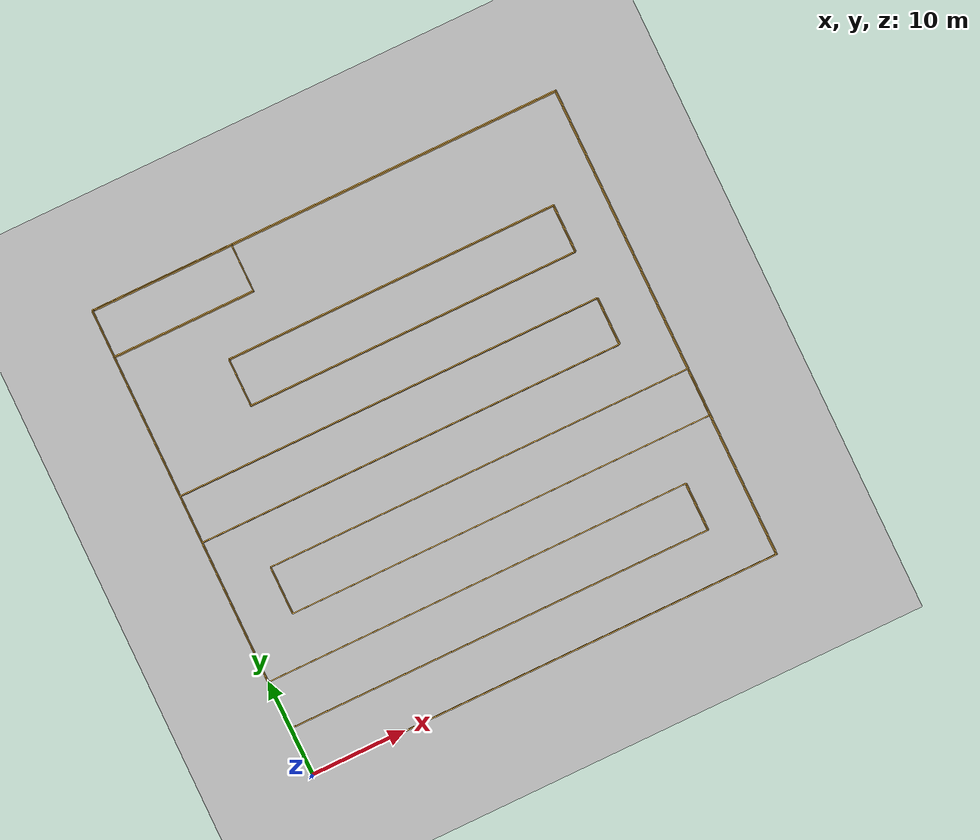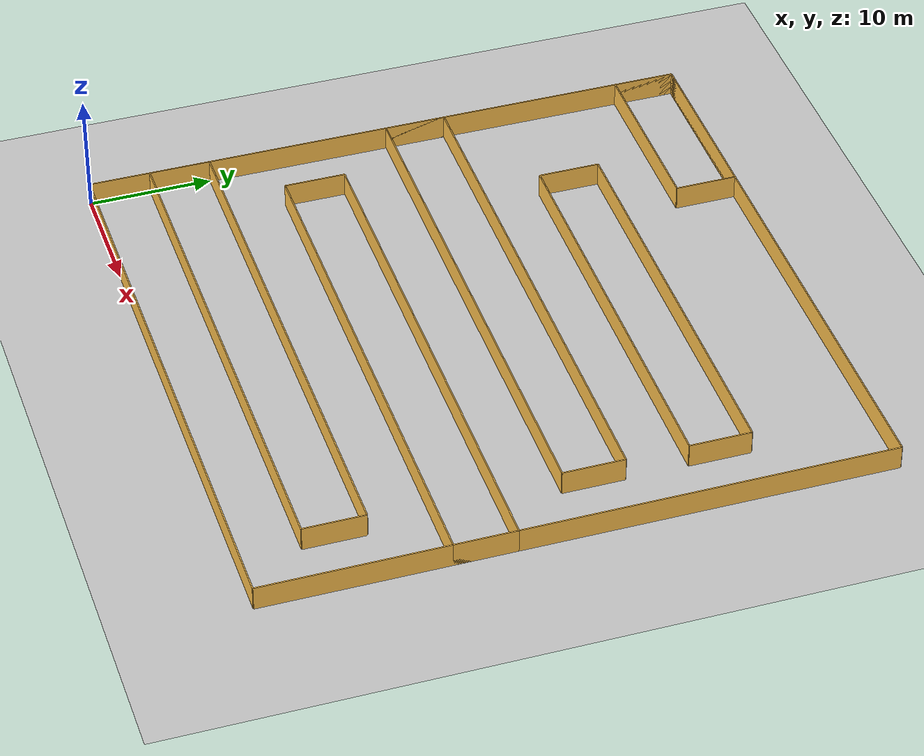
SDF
<sdf version="1.6">
 <world name="default">
  <light name="sun" type="directional">
   <cast_shadows>0</cast_shadows>
   <pose>0 0 10 0 -0 0</pose>
   <diffuse>0.8 0.8 0.8 1</diffuse>
   <specular>0.2 0.2 0.2 1</specular>
   <attenuation>
    <range>1000</range>
    <constant>0.9</constant>
    <linear>0.01</linear>
    <quadratic>0.001</quadratic>
   </attenuation>
   <direction>0.5 0.1 -0.9</direction>
  </light>
  <model name="ground_plane">
   <static>1</static>
   <link name="link">
    <collision name="collision">
     <geometry><plane><normal>0 0 1</normal><size>100 100</size></plane></geometry>
     <surface><friction><ode><mu>100</mu><mu2>50</mu2></ode></friction></surface>
    </collision>
    <visual name="visual">
     <cast_shadows>0</cast_shadows>
     <geometry><plane><normal>0 0 1</normal><size>100 100</size></plane></geometry>
     <material>
      <script><uri>file://media/materials/scripts/gazebo.material</uri><name>Gazebo/Grey</name></script>
     </material>
    </visual>
    <velocity_decay><linear>0</linear><angular>0</angular></velocity_decay>
   </link>
  </model>
  <scene><ambient>0.4 0.4 0.4 1</ambient><background>0.7 0.7 0.7 1</background><shadows>0</shadows></scene>
  <gravity>0 0 -9.8</gravity>
  <physics type="ode">
   <max_step_size>0.001</max_step_size>
   <real_time_factor>1</real_time_factor>
   <real_time_update_rate>500</real_time_update_rate>
  </physics>
  <include><uri>model://scene_2</uri></include>
 </world>
</sdf>

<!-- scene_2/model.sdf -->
<sdf version="1.6">
  <model name="scene_2">
    <static>true</static>
    <link name="wall_0">
      <pose>22.5 5.0 1.0 0 0 0.0</pose>
      <self_collide>0</self_collide>
      <kinematic>0</kinematic>
      <visual name="wall_0_visual">
        <geometry>
          <box>
            <size>45.0 0.1 2.0</size>
            </box>
          </geometry>
        <material>
          <script>
            <uri>file://media/materials/scripts/gazebo.material</uri>
            <name>Gazebo/Grey</name>
            </script>
          <ambient>1 0.764706 0.305882 1</ambient>
          <diffuse>0.7 0.7 0.7 1</diffuse>
          <specular>0.01 0.01 0.01 1</specular>
          <emissive>0 0 0 1</emissive>
          <shader type="pixel" />
          </material>
        <cast_shadows>1</cast_shadows>
        <transparency>0</transparency>
        </visual>
      <collision name="wall_0_collision">
        <geometry>
          <box>
            <size>45.0 0.1 2.0</size>
            </box>
          </geometry>
        <laser_retro>0</laser_retro>
        <max_contacts>10</max_contacts>
        <surface>
          <friction>
            <ode>
              <mu>1</mu>
              <mu2>1</mu2>
              <fdir1>0 0 0</fdir1>
              <slip1>0</slip1>
              <slip2>0</slip2>
              </ode>
            </friction>
          <bounce>
            <restitution_coefficient>0</restitution_coefficient>
            <threshold>1000000</threshold>
            </bounce>
          <contact>
            <collide_without_contact>0</collide_without_contact>
            <collide_without_contact_bitmask>1</collide_without_contact_bitmask>
            <collide_bitmask>1</collide_bitmask>
            <ode>
              <soft_cfm>0</soft_cfm>
              <soft_erp>0.2</soft_erp>
              <kp>10000000000000.0</kp>
              <kd>1</kd>
              <max_vel>0.01</max_vel>
              <min_depth>0</min_depth>
              </ode>
            <bullet>
              <split_impulse>1</split_impulse>
              <split_impulse_penetration_threshold>-0.01</split_impulse_penetration_threshold>
              <soft_cfm>0</soft_cfm>
              <soft_erp>0.2</soft_erp>
              <kp>10000000000000.0</kp>
              <kd>1</kd>
              </bullet>
            </contact>
          </surface>
        </collision>
      </link>
    <link name="wall_1">
      <pose>45.0 7.5 1.0 0 0 1.5707963267948966</pose>
      <self_collide>0</self_collide>
      <kinematic>0</kinematic>
      <visual name="wall_1_visual">
        <geometry>
          <box>
            <size>5.0 0.1 2.0</size>
            </box>
          </geometry>
        <material>
          <script>
            <uri>file://media/materials/scripts/gazebo.material</uri>
            <name>Gazebo/Grey</name>
            </script>
          <ambient>1 0.764706 0.305882 1</ambient>
          <diffuse>0.7 0.7 0.7 1</diffuse>
          <specular>0.01 0.01 0.01 1</specular>
          <emissive>0 0 0 1</emissive>
          <shader type="pixel" />
          </material>
        <cast_shadows>1</cast_shadows>
        <transparency>0</transparency>
        </visual>
      <collision name="wall_1_collision">
        <geometry>
          <box>
            <size>5.0 0.1 2.0</size>
            </box>
          </geometry>
        <laser_retro>0</laser_retro>
        <max_contacts>10</max_contacts>
        <surface>
          <friction>
            <ode>
              <mu>1</mu>
              <mu2>1</mu2>
              <fdir1>0 0 0</fdir1>
              <slip1>0</slip1>
              <slip2>0</slip2>
              </ode>
            </friction>
          <bounce>
            <restitution_coefficient>0</restitution_coefficient>
            <threshold>1000000</threshold>
            </bounce>
          <contact>
            <collide_without_contact>0</collide_without_contact>
            <collide_without_contact_bitmask>1</collide_without_contact_bitmask>
            <collide_bitmask>1</collide_bitmask>
            <ode>
              <soft_cfm>0</soft_cfm>
              <soft_erp>0.2</soft_erp>
              <kp>10000000000000.0</kp>
              <kd>1</kd>
              <max_vel>0.01</max_vel>
              <min_depth>0</min_depth>
              </ode>
            <bullet>
              <split_impulse>1</split_impulse>
              <split_impulse_penetration_threshold>-0.01</split_impulse_penetration_threshold>
              <soft_cfm>0</soft_cfm>
              <soft_erp>0.2</soft_erp>
              <kp>10000000000000.0</kp>
              <kd>1</kd>
              </bullet>
            </contact>
          </surface>
        </collision>
      </link>
    <link name="wall_2">
      <pose>22.5 10.0 1.0 0 0 3.141592653589793</pose>
      <self_collide>0</self_collide>
      <kinematic>0</kinematic>
      <visual name="wall_2_visual">
        <geometry>
          <box>
            <size>45.0 0.1 2.0</size>
            </box>
          </geometry>
        <material>
          <script>
            <uri>file://media/materials/scripts/gazebo.material</uri>
            <name>Gazebo/Grey</name>
            </script>
          <ambient>1 0.764706 0.305882 1</ambient>
          <diffuse>0.7 0.7 0.7 1</diffuse>
          <specular>0.01 0.01 0.01 1</specular>
          <emissive>0 0 0 1</emissive>
          <shader type="pixel" />
          </material>
        <cast_shadows>1</cast_shadows>
        <transparency>0</transparency>
        </visual>
      <collision name="wall_2_collision">
        <geometry>
          <box>
            <size>45.0 0.1 2.0</size>
            </box>
          </geometry>
        <laser_retro>0</laser_retro>
        <max_contacts>10</max_contacts>
        <surface>
          <friction>
            <ode>
              <mu>1</mu>
              <mu2>1</mu2>
              <fdir1>0 0 0</fdir1>
              <slip1>0</slip1>
              <slip2>0</slip2>
              </ode>
            </friction>
          <bounce>
            <restitution_coefficient>0</restitution_coefficient>
            <threshold>1000000</threshold>
            </bounce>
          <contact>
            <collide_without_contact>0</collide_without_contact>
            <collide_without_contact_bitmask>1</collide_without_contact_bitmask>
            <collide_bitmask>1</collide_bitmask>
            <ode>
              <soft_cfm>0</soft_cfm>
              <soft_erp>0.2</soft_erp>
              <kp>10000000000000.0</kp>
              <kd>1</kd>
              <max_vel>0.01</max_vel>
              <min_depth>0</min_depth>
              </ode>
            <bullet>
              <split_impulse>1</split_impulse>
              <split_impulse_penetration_threshold>-0.01</split_impulse_penetration_threshold>
              <soft_cfm>0</soft_cfm>
              <soft_erp>0.2</soft_erp>
              <kp>10000000000000.0</kp>
              <kd>1</kd>
              </bullet>
            </contact>
          </surface>
        </collision>
      </link>
    <link name="wall_3">
      <pose>0.0 7.5 1.0 0 0 -1.5707963267948966</pose>
      <self_collide>0</self_collide>
      <kinematic>0</kinematic>
      <visual name="wall_3_visual">
        <geometry>
          <box>
            <size>5.0 0.1 2.0</size>
            </box>
          </geometry>
        <material>
          <script>
            <uri>file://media/materials/scripts/gazebo.material</uri>
            <name>Gazebo/Grey</name>
            </script>
          <ambient>1 0.764706 0.305882 1</ambient>
          <diffuse>0.7 0.7 0.7 1</diffuse>
          <specular>0.01 0.01 0.01 1</specular>
          <emissive>0 0 0 1</emissive>
          <shader type="pixel" />
          </material>
        <cast_shadows>1</cast_shadows>
        <transparency>0</transparency>
        </visual>
      <collision name="wall_3_collision">
        <geometry>
          <box>
            <size>5.0 0.1 2.0</size>
            </box>
          </geometry>
        <laser_retro>0</laser_retro>
        <max_contacts>10</max_contacts>
        <surface>
          <friction>
            <ode>
              <mu>1</mu>
              <mu2>1</mu2>
              <fdir1>0 0 0</fdir1>
              <slip1>0</slip1>
              <slip2>0</slip2>
              </ode>
            </friction>
          <bounce>
            <restitution_coefficient>0</restitution_coefficient>
            <threshold>1000000</threshold>
            </bounce>
          <contact>
            <collide_without_contact>0</collide_without_contact>
            <collide_without_contact_bitmask>1</collide_without_contact_bitmask>
            <collide_bitmask>1</collide_bitmask>
            <ode>
              <soft_cfm>0</soft_cfm>
              <soft_erp>0.2</soft_erp>
              <kp>10000000000000.0</kp>
              <kd>1</kd>
              <max_vel>0.01</max_vel>
              <min_depth>0</min_depth>
              </ode>
            <bullet>
              <split_impulse>1</split_impulse>
              <split_impulse_penetration_threshold>-0.01</split_impulse_penetration_threshold>
              <soft_cfm>0</soft_cfm>
              <soft_erp>0.2</soft_erp>
              <kp>10000000000000.0</kp>
              <kd>1</kd>
              </bullet>
            </contact>
          </surface>
        </collision>
      </link>
    <link name="wall_4">
      <pose>27.5 15.0 1.0 0 0 0.0</pose>
      <self_collide>0</self_collide>
      <kinematic>0</kinematic>
      <visual name="wall_4_visual">
        <geometry>
          <box>
            <size>45.0 0.1 2.0</size>
            </box>
          </geometry>
        <material>
          <script>
            <uri>file://media/materials/scripts/gazebo.material</uri>
            <name>Gazebo/Grey</name>
            </script>
          <ambient>1 0.764706 0.305882 1</ambient>
          <diffuse>0.7 0.7 0.7 1</diffuse>
          <specular>0.01 0.01 0.01 1</specular>
          <emissive>0 0 0 1</emissive>
          <shader type="pixel" />
          </material>
        <cast_shadows>1</cast_shadows>
        <transparency>0</transparency>
        </visual>
      <collision name="wall_4_collision">
        <geometry>
          <box>
            <size>45.0 0.1 2.0</size>
            </box>
          </geometry>
        <laser_retro>0</laser_retro>
        <max_contacts>10</max_contacts>
        <surface>
          <friction>
            <ode>
              <mu>1</mu>
              <mu2>1</mu2>
              <fdir1>0 0 0</fdir1>
              <slip1>0</slip1>
              <slip2>0</slip2>
              </ode>
            </friction>
          <bounce>
            <restitution_coefficient>0</restitution_coefficient>
            <threshold>1000000</threshold>
            </bounce>
          <contact>
            <collide_without_contact>0</collide_without_contact>
            <collide_without_contact_bitmask>1</collide_without_contact_bitmask>
            <collide_bitmask>1</collide_bitmask>
            <ode>
              <soft_cfm>0</soft_cfm>
              <soft_erp>0.2</soft_erp>
              <kp>10000000000000.0</kp>
              <kd>1</kd>
              <max_vel>0.01</max_vel>
              <min_depth>0</min_depth>
              </ode>
            <bullet>
              <split_impulse>1</split_impulse>
              <split_impulse_penetration_threshold>-0.01</split_impulse_penetration_threshold>
              <soft_cfm>0</soft_cfm>
              <soft_erp>0.2</soft_erp>
              <kp>10000000000000.0</kp>
              <kd>1</kd>
              </bullet>
            </contact>
          </surface>
        </collision>
      </link>
    <link name="wall_5">
      <pose>50.0 17.5 1.0 0 0 1.5707963267948966</pose>
      <self_collide>0</self_collide>
      <kinematic>0</kinematic>
      <visual name="wall_5_visual">
        <geometry>
          <box>
            <size>5.0 0.1 2.0</size>
            </box>
          </geometry>
        <material>
          <script>
            <uri>file://media/materials/scripts/gazebo.material</uri>
            <name>Gazebo/Grey</name>
            </script>
          <ambient>1 0.764706 0.305882 1</ambient>
          <diffuse>0.7 0.7 0.7 1</diffuse>
          <specular>0.01 0.01 0.01 1</specular>
          <emissive>0 0 0 1</emissive>
          <shader type="pixel" />
          </material>
        <cast_shadows>1</cast_shadows>
        <transparency>0</transparency>
        </visual>
      <collision name="wall_5_collision">
        <geometry>
          <box>
            <size>5.0 0.1 2.0</size>
            </box>
          </geometry>
        <laser_retro>0</laser_retro>
        <max_contacts>10</max_contacts>
        <surface>
          <friction>
            <ode>
              <mu>1</mu>
              <mu2>1</mu2>
              <fdir1>0 0 0</fdir1>
              <slip1>0</slip1>
              <slip2>0</slip2>
              </ode>
            </friction>
          <bounce>
            <restitution_coefficient>0</restitution_coefficient>
            <threshold>1000000</threshold>
            </bounce>
          <contact>
            <collide_without_contact>0</collide_without_contact>
            <collide_without_contact_bitmask>1</collide_without_contact_bitmask>
            <collide_bitmask>1</collide_bitmask>
            <ode>
              <soft_cfm>0</soft_cfm>
              <soft_erp>0.2</soft_erp>
              <kp>10000000000000.0</kp>
              <kd>1</kd>
              <max_vel>0.01</max_vel>
              <min_depth>0</min_depth>
              </ode>
            <bullet>
              <split_impulse>1</split_impulse>
              <split_impulse_penetration_threshold>-0.01</split_impulse_penetration_threshold>
              <soft_cfm>0</soft_cfm>
              <soft_erp>0.2</soft_erp>
              <kp>10000000000000.0</kp>
              <kd>1</kd>
              </bullet>
            </contact>
          </surface>
        </collision>
      </link>
    <link name="wall_6">
      <pose>27.5 20.0 1.0 0 0 3.141592653589793</pose>
      <self_collide>0</self_collide>
      <kinematic>0</kinematic>
      <visual name="wall_6_visual">
        <geometry>
          <box>
            <size>45.0 0.1 2.0</size>
            </box>
          </geometry>
        <material>
          <script>
            <uri>file://media/materials/scripts/gazebo.material</uri>
            <name>Gazebo/Grey</name>
            </script>
          <ambient>1 0.764706 0.305882 1</ambient>
          <diffuse>0.7 0.7 0.7 1</diffuse>
          <specular>0.01 0.01 0.01 1</specular>
          <emissive>0 0 0 1</emissive>
          <shader type="pixel" />
          </material>
        <cast_shadows>1</cast_shadows>
        <transparency>0</transparency>
        </visual>
      <collision name="wall_6_collision">
        <geometry>
          <box>
            <size>45.0 0.1 2.0</size>
            </box>
          </geometry>
        <laser_retro>0</laser_retro>
        <max_contacts>10</max_contacts>
        <surface>
          <friction>
            <ode>
              <mu>1</mu>
              <mu2>1</mu2>
              <fdir1>0 0 0</fdir1>
              <slip1>0</slip1>
              <slip2>0</slip2>
              </ode>
            </friction>
          <bounce>
            <restitution_coefficient>0</restitution_coefficient>
            <threshold>1000000</threshold>
            </bounce>
          <contact>
            <collide_without_contact>0</collide_without_contact>
            <collide_without_contact_bitmask>1</collide_without_contact_bitmask>
            <collide_bitmask>1</collide_bitmask>
            <ode>
              <soft_cfm>0</soft_cfm>
              <soft_erp>0.2</soft_erp>
              <kp>10000000000000.0</kp>
              <kd>1</kd>
              <max_vel>0.01</max_vel>
              <min_depth>0</min_depth>
              </ode>
            <bullet>
              <split_impulse>1</split_impulse>
              <split_impulse_penetration_threshold>-0.01</split_impulse_penetration_threshold>
              <soft_cfm>0</soft_cfm>
              <soft_erp>0.2</soft_erp>
              <kp>10000000000000.0</kp>
              <kd>1</kd>
              </bullet>
            </contact>
          </surface>
        </collision>
      </link>
    <link name="wall_7">
      <pose>5.0 17.5 1.0 0 0 -1.5707963267948966</pose>
      <self_collide>0</self_collide>
      <kinematic>0</kinematic>
      <visual name="wall_7_visual">
        <geometry>
          <box>
            <size>5.0 0.1 2.0</size>
            </box>
          </geometry>
        <material>
          <script>
            <uri>file://media/materials/scripts/gazebo.material</uri>
            <name>Gazebo/Grey</name>
            </script>
          <ambient>1 0.764706 0.305882 1</ambient>
          <diffuse>0.7 0.7 0.7 1</diffuse>
          <specular>0.01 0.01 0.01 1</specular>
          <emissive>0 0 0 1</emissive>
          <shader type="pixel" />
          </material>
        <cast_shadows>1</cast_shadows>
        <transparency>0</transparency>
        </visual>
      <collision name="wall_7_collision">
        <geometry>
          <box>
            <size>5.0 0.1 2.0</size>
            </box>
          </geometry>
        <laser_retro>0</laser_retro>
        <max_contacts>10</max_contacts>
        <surface>
          <friction>
            <ode>
              <mu>1</mu>
              <mu2>1</mu2>
              <fdir1>0 0 0</fdir1>
              <slip1>0</slip1>
              <slip2>0</slip2>
              </ode>
            </friction>
          <bounce>
            <restitution_coefficient>0</restitution_coefficient>
            <threshold>1000000</threshold>
            </bounce>
          <contact>
            <collide_without_contact>0</collide_without_contact>
            <collide_without_contact_bitmask>1</collide_without_contact_bitmask>
            <collide_bitmask>1</collide_bitmask>
            <ode>
              <soft_cfm>0</soft_cfm>
              <soft_erp>0.2</soft_erp>
              <kp>10000000000000.0</kp>
              <kd>1</kd>
              <max_vel>0.01</max_vel>
              <min_depth>0</min_depth>
              </ode>
            <bullet>
              <split_impulse>1</split_impulse>
              <split_impulse_penetration_threshold>-0.01</split_impulse_penetration_threshold>
              <soft_cfm>0</soft_cfm>
              <soft_erp>0.2</soft_erp>
              <kp>10000000000000.0</kp>
              <kd>1</kd>
              </bullet>
            </contact>
          </surface>
        </collision>
      </link>
    <link name="wall_8">
      <pose>22.5 25.0 1.0 0 0 0.0</pose>
      <self_collide>0</self_collide>
      <kinematic>0</kinematic>
      <visual name="wall_8_visual">
        <geometry>
          <box>
            <size>45.0 0.1 2.0</size>
            </box>
          </geometry>
        <material>
          <script>
            <uri>file://media/materials/scripts/gazebo.material</uri>
            <name>Gazebo/Grey</name>
            </script>
          <ambient>1 0.764706 0.305882 1</ambient>
          <diffuse>0.7 0.7 0.7 1</diffuse>
          <specular>0.01 0.01 0.01 1</specular>
          <emissive>0 0 0 1</emissive>
          <shader type="pixel" />
          </material>
        <cast_shadows>1</cast_shadows>
        <transparency>0</transparency>
        </visual>
      <collision name="wall_8_collision">
        <geometry>
          <box>
            <size>45.0 0.1 2.0</size>
            </box>
          </geometry>
        <laser_retro>0</laser_retro>
        <max_contacts>10</max_contacts>
        <surface>
          <friction>
            <ode>
              <mu>1</mu>
              <mu2>1</mu2>
              <fdir1>0 0 0</fdir1>
              <slip1>0</slip1>
              <slip2>0</slip2>
              </ode>
            </friction>
          <bounce>
            <restitution_coefficient>0</restitution_coefficient>
            <threshold>1000000</threshold>
            </bounce>
          <contact>
            <collide_without_contact>0</collide_without_contact>
            <collide_without_contact_bitmask>1</collide_without_contact_bitmask>
            <collide_bitmask>1</collide_bitmask>
            <ode>
              <soft_cfm>0</soft_cfm>
              <soft_erp>0.2</soft_erp>
              <kp>10000000000000.0</kp>
              <kd>1</kd>
              <max_vel>0.01</max_vel>
              <min_depth>0</min_depth>
              </ode>
            <bullet>
              <split_impulse>1</split_impulse>
              <split_impulse_penetration_threshold>-0.01</split_impulse_penetration_threshold>
              <soft_cfm>0</soft_cfm>
              <soft_erp>0.2</soft_erp>
              <kp>10000000000000.0</kp>
              <kd>1</kd>
              </bullet>
            </contact>
          </surface>
        </collision>
      </link>
    <link name="wall_9">
      <pose>45.0 27.5 1.0 0 0 1.5707963267948966</pose>
      <self_collide>0</self_collide>
      <kinematic>0</kinematic>
      <visual name="wall_9_visual">
        <geometry>
          <box>
            <size>5.0 0.1 2.0</size>
            </box>
          </geometry>
        <material>
          <script>
            <uri>file://media/materials/scripts/gazebo.material</uri>
            <name>Gazebo/Grey</name>
            </script>
          <ambient>1 0.764706 0.305882 1</ambient>
          <diffuse>0.7 0.7 0.7 1</diffuse>
          <specular>0.01 0.01 0.01 1</specular>
          <emissive>0 0 0 1</emissive>
          <shader type="pixel" />
          </material>
        <cast_shadows>1</cast_shadows>
        <transparency>0</transparency>
        </visual>
      <collision name="wall_9_collision">
        <geometry>
          <box>
            <size>5.0 0.1 2.0</size>
            </box>
          </geometry>
        <laser_retro>0</laser_retro>
        <max_contacts>10</max_contacts>
        <surface>
          <friction>
            <ode>
              <mu>1</mu>
              <mu2>1</mu2>
              <fdir1>0 0 0</fdir1>
              <slip1>0</slip1>
              <slip2>0</slip2>
              </ode>
            </friction>
          <bounce>
            <restitution_coefficient>0</restitution_coefficient>
            <threshold>1000000</threshold>
            </bounce>
          <contact>
            <collide_without_contact>0</collide_without_contact>
            <collide_without_contact_bitmask>1</collide_without_contact_bitmask>
            <collide_bitmask>1</collide_bitmask>
            <ode>
              <soft_cfm>0</soft_cfm>
              <soft_erp>0.2</soft_erp>
              <kp>10000000000000.0</kp>
              <kd>1</kd>
              <max_vel>0.01</max_vel>
              <min_depth>0</min_depth>
              </ode>
            <bullet>
              <split_impulse>1</split_impulse>
              <split_impulse_penetration_threshold>-0.01</split_impulse_penetration_threshold>
              <soft_cfm>0</soft_cfm>
              <soft_erp>0.2</soft_erp>
              <kp>10000000000000.0</kp>
              <kd>1</kd>
              </bullet>
            </contact>
          </surface>
        </collision>
      </link>
    <link name="wall_10">
      <pose>22.5 30.0 1.0 0 0 3.141592653589793</pose>
      <self_collide>0</self_collide>
      <kinematic>0</kinematic>
      <visual name="wall_10_visual">
        <geometry>
          <box>
            <size>45.0 0.1 2.0</size>
            </box>
          </geometry>
        <material>
          <script>
            <uri>file://media/materials/scripts/gazebo.material</uri>
            <name>Gazebo/Grey</name>
            </script>
          <ambient>1 0.764706 0.305882 1</ambient>
          <diffuse>0.7 0.7 0.7 1</diffuse>
          <specular>0.01 0.01 0.01 1</specular>
          <emissive>0 0 0 1</emissive>
          <shader type="pixel" />
          </material>
        <cast_shadows>1</cast_shadows>
        <transparency>0</transparency>
        </visual>
      <collision name="wall_10_collision">
        <geometry>
          <box>
            <size>45.0 0.1 2.0</size>
            </box>
          </geometry>
        <laser_retro>0</laser_retro>
        <max_contacts>10</max_contacts>
        <surface>
          <friction>
            <ode>
              <mu>1</mu>
              <mu2>1</mu2>
              <fdir1>0 0 0</fdir1>
              <slip1>0</slip1>
              <slip2>0</slip2>
              </ode>
            </friction>
          <bounce>
            <restitution_coefficient>0</restitution_coefficient>
            <threshold>1000000</threshold>
            </bounce>
          <contact>
            <collide_without_contact>0</collide_without_contact>
            <collide_without_contact_bitmask>1</collide_without_contact_bitmask>
            <collide_bitmask>1</collide_bitmask>
            <ode>
              <soft_cfm>0</soft_cfm>
              <soft_erp>0.2</soft_erp>
              <kp>10000000000000.0</kp>
              <kd>1</kd>
              <max_vel>0.01</max_vel>
              <min_depth>0</min_depth>
              </ode>
            <bullet>
              <split_impulse>1</split_impulse>
              <split_impulse_penetration_threshold>-0.01</split_impulse_penetration_threshold>
              <soft_cfm>0</soft_cfm>
              <soft_erp>0.2</soft_erp>
              <kp>10000000000000.0</kp>
              <kd>1</kd>
              </bullet>
            </contact>
          </surface>
        </collision>
      </link>
    <link name="wall_11">
      <pose>0.0 27.5 1.0 0 0 -1.5707963267948966</pose>
      <self_collide>0</self_collide>
      <kinematic>0</kinematic>
      <visual name="wall_11_visual">
        <geometry>
          <box>
            <size>5.0 0.1 2.0</size>
            </box>
          </geometry>
        <material>
          <script>
            <uri>file://media/materials/scripts/gazebo.material</uri>
            <name>Gazebo/Grey</name>
            </script>
          <ambient>1 0.764706 0.305882 1</ambient>
          <diffuse>0.7 0.7 0.7 1</diffuse>
          <specular>0.01 0.01 0.01 1</specular>
          <emissive>0 0 0 1</emissive>
          <shader type="pixel" />
          </material>
        <cast_shadows>1</cast_shadows>
        <transparency>0</transparency>
        </visual>
      <collision name="wall_11_collision">
        <geometry>
          <box>
            <size>5.0 0.1 2.0</size>
            </box>
          </geometry>
        <laser_retro>0</laser_retro>
        <max_contacts>10</max_contacts>
        <surface>
          <friction>
            <ode>
              <mu>1</mu>
              <mu2>1</mu2>
              <fdir1>0 0 0</fdir1>
              <slip1>0</slip1>
              <slip2>0</slip2>
              </ode>
            </friction>
          <bounce>
            <restitution_coefficient>0</restitution_coefficient>
            <threshold>1000000</threshold>
            </bounce>
          <contact>
            <collide_without_contact>0</collide_without_contact>
            <collide_without_contact_bitmask>1</collide_without_contact_bitmask>
            <collide_bitmask>1</collide_bitmask>
            <ode>
              <soft_cfm>0</soft_cfm>
              <soft_erp>0.2</soft_erp>
              <kp>10000000000000.0</kp>
              <kd>1</kd>
              <max_vel>0.01</max_vel>
              <min_depth>0</min_depth>
              </ode>
            <bullet>
              <split_impulse>1</split_impulse>
              <split_impulse_penetration_threshold>-0.01</split_impulse_penetration_threshold>
              <soft_cfm>0</soft_cfm>
              <soft_erp>0.2</soft_erp>
              <kp>10000000000000.0</kp>
              <kd>1</kd>
              </bullet>
            </contact>
          </surface>
        </collision>
      </link>
    <link name="wall_12">
      <pose>27.5 35.0 1.0 0 0 0.0</pose>
      <self_collide>0</self_collide>
      <kinematic>0</kinematic>
      <visual name="wall_12_visual">
        <geometry>
          <box>
            <size>35.0 0.1 2.0</size>
            </box>
          </geometry>
        <material>
          <script>
            <uri>file://media/materials/scripts/gazebo.material</uri>
            <name>Gazebo/Grey</name>
            </script>
          <ambient>1 0.764706 0.305882 1</ambient>
          <diffuse>0.7 0.7 0.7 1</diffuse>
          <specular>0.01 0.01 0.01 1</specular>
          <emissive>0 0 0 1</emissive>
          <shader type="pixel" />
          </material>
        <cast_shadows>1</cast_shadows>
        <transparency>0</transparency>
        </visual>
      <collision name="wall_12_collision">
        <geometry>
          <box>
            <size>35.0 0.1 2.0</size>
            </box>
          </geometry>
        <laser_retro>0</laser_retro>
        <max_contacts>10</max_contacts>
        <surface>
          <friction>
            <ode>
              <mu>1</mu>
              <mu2>1</mu2>
              <fdir1>0 0 0</fdir1>
              <slip1>0</slip1>
              <slip2>0</slip2>
              </ode>
            </friction>
          <bounce>
            <restitution_coefficient>0</restitution_coefficient>
            <threshold>1000000</threshold>
            </bounce>
          <contact>
            <collide_without_contact>0</collide_without_contact>
            <collide_without_contact_bitmask>1</collide_without_contact_bitmask>
            <collide_bitmask>1</collide_bitmask>
            <ode>
              <soft_cfm>0</soft_cfm>
              <soft_erp>0.2</soft_erp>
              <kp>10000000000000.0</kp>
              <kd>1</kd>
              <max_vel>0.01</max_vel>
              <min_depth>0</min_depth>
              </ode>
            <bullet>
              <split_impulse>1</split_impulse>
              <split_impulse_penetration_threshold>-0.01</split_impulse_penetration_threshold>
              <soft_cfm>0</soft_cfm>
              <soft_erp>0.2</soft_erp>
              <kp>10000000000000.0</kp>
              <kd>1</kd>
              </bullet>
            </contact>
          </surface>
        </collision>
      </link>
    <link name="wall_13">
      <pose>45.0 37.5 1.0 0 0 1.5707963267948966</pose>
      <self_collide>0</self_collide>
      <kinematic>0</kinematic>
      <visual name="wall_13_visual">
        <geometry>
          <box>
            <size>5.0 0.1 2.0</size>
            </box>
          </geometry>
        <material>
          <script>
            <uri>file://media/materials/scripts/gazebo.material</uri>
            <name>Gazebo/Grey</name>
            </script>
          <ambient>1 0.764706 0.305882 1</ambient>
          <diffuse>0.7 0.7 0.7 1</diffuse>
          <specular>0.01 0.01 0.01 1</specular>
          <emissive>0 0 0 1</emissive>
          <shader type="pixel" />
          </material>
        <cast_shadows>1</cast_shadows>
        <transparency>0</transparency>
        </visual>
      <collision name="wall_13_collision">
        <geometry>
          <box>
            <size>5.0 0.1 2.0</size>
            </box>
          </geometry>
        <laser_retro>0</laser_retro>
        <max_contacts>10</max_contacts>
        <surface>
          <friction>
            <ode>
              <mu>1</mu>
              <mu2>1</mu2>
              <fdir1>0 0 0</fdir1>
              <slip1>0</slip1>
              <slip2>0</slip2>
              </ode>
            </friction>
          <bounce>
            <restitution_coefficient>0</restitution_coefficient>
            <threshold>1000000</threshold>
            </bounce>
          <contact>
            <collide_without_contact>0</collide_without_contact>
            <collide_without_contact_bitmask>1</collide_without_contact_bitmask>
            <collide_bitmask>1</collide_bitmask>
            <ode>
              <soft_cfm>0</soft_cfm>
              <soft_erp>0.2</soft_erp>
              <kp>10000000000000.0</kp>
              <kd>1</kd>
              <max_vel>0.01</max_vel>
              <min_depth>0</min_depth>
              </ode>
            <bullet>
              <split_impulse>1</split_impulse>
              <split_impulse_penetration_threshold>-0.01</split_impulse_penetration_threshold>
              <soft_cfm>0</soft_cfm>
              <soft_erp>0.2</soft_erp>
              <kp>10000000000000.0</kp>
              <kd>1</kd>
              </bullet>
            </contact>
          </surface>
        </collision>
      </link>
    <link name="wall_14">
      <pose>27.5 40.0 1.0 0 0 3.141592653589793</pose>
      <self_collide>0</self_collide>
      <kinematic>0</kinematic>
      <visual name="wall_14_visual">
        <geometry>
          <box>
            <size>35.0 0.1 2.0</size>
            </box>
          </geometry>
        <material>
          <script>
            <uri>file://media/materials/scripts/gazebo.material</uri>
            <name>Gazebo/Grey</name>
            </script>
          <ambient>1 0.764706 0.305882 1</ambient>
          <diffuse>0.7 0.7 0.7 1</diffuse>
          <specular>0.01 0.01 0.01 1</specular>
          <emissive>0 0 0 1</emissive>
          <shader type="pixel" />
          </material>
        <cast_shadows>1</cast_shadows>
        <transparency>0</transparency>
        </visual>
      <collision name="wall_14_collision">
        <geometry>
          <box>
            <size>35.0 0.1 2.0</size>
            </box>
          </geometry>
        <laser_retro>0</laser_retro>
        <max_contacts>10</max_contacts>
        <surface>
          <friction>
            <ode>
              <mu>1</mu>
              <mu2>1</mu2>
              <fdir1>0 0 0</fdir1>
              <slip1>0</slip1>
              <slip2>0</slip2>
              </ode>
            </friction>
          <bounce>
            <restitution_coefficient>0</restitution_coefficient>
            <threshold>1000000</threshold>
            </bounce>
          <contact>
            <collide_without_contact>0</collide_without_contact>
            <collide_without_contact_bitmask>1</collide_without_contact_bitmask>
            <collide_bitmask>1</collide_bitmask>
            <ode>
              <soft_cfm>0</soft_cfm>
              <soft_erp>0.2</soft_erp>
              <kp>10000000000000.0</kp>
              <kd>1</kd>
              <max_vel>0.01</max_vel>
              <min_depth>0</min_depth>
              </ode>
            <bullet>
              <split_impulse>1</split_impulse>
              <split_impulse_penetration_threshold>-0.01</split_impulse_penetration_threshold>
              <soft_cfm>0</soft_cfm>
              <soft_erp>0.2</soft_erp>
              <kp>10000000000000.0</kp>
              <kd>1</kd>
              </bullet>
            </contact>
          </surface>
        </collision>
      </link>
    <link name="wall_15">
      <pose>10.0 37.5 1.0 0 0 -1.5707963267948966</pose>
      <self_collide>0</self_collide>
      <kinematic>0</kinematic>
      <visual name="wall_15_visual">
        <geometry>
          <box>
            <size>5.0 0.1 2.0</size>
            </box>
          </geometry>
        <material>
          <script>
            <uri>file://media/materials/scripts/gazebo.material</uri>
            <name>Gazebo/Grey</name>
            </script>
          <ambient>1 0.764706 0.305882 1</ambient>
          <diffuse>0.7 0.7 0.7 1</diffuse>
          <specular>0.01 0.01 0.01 1</specular>
          <emissive>0 0 0 1</emissive>
          <shader type="pixel" />
          </material>
        <cast_shadows>1</cast_shadows>
        <transparency>0</transparency>
        </visual>
      <collision name="wall_15_collision">
        <geometry>
          <box>
            <size>5.0 0.1 2.0</size>
            </box>
          </geometry>
        <laser_retro>0</laser_retro>
        <max_contacts>10</max_contacts>
        <surface>
          <friction>
            <ode>
              <mu>1</mu>
              <mu2>1</mu2>
              <fdir1>0 0 0</fdir1>
              <slip1>0</slip1>
              <slip2>0</slip2>
              </ode>
            </friction>
          <bounce>
            <restitution_coefficient>0</restitution_coefficient>
            <threshold>1000000</threshold>
            </bounce>
          <contact>
            <collide_without_contact>0</collide_without_contact>
            <collide_without_contact_bitmask>1</collide_without_contact_bitmask>
            <collide_bitmask>1</collide_bitmask>
            <ode>
              <soft_cfm>0</soft_cfm>
              <soft_erp>0.2</soft_erp>
              <kp>10000000000000.0</kp>
              <kd>1</kd>
              <max_vel>0.01</max_vel>
              <min_depth>0</min_depth>
              </ode>
            <bullet>
              <split_impulse>1</split_impulse>
              <split_impulse_penetration_threshold>-0.01</split_impulse_penetration_threshold>
              <soft_cfm>0</soft_cfm>
              <soft_erp>0.2</soft_erp>
              <kp>10000000000000.0</kp>
              <kd>1</kd>
              </bullet>
            </contact>
          </surface>
        </collision>
      </link>
    <link name="wall_16">
      <pose>7.5 45.0 1.0 0 0 0.0</pose>
      <self_collide>0</self_collide>
      <kinematic>0</kinematic>
      <visual name="wall_16_visual">
        <geometry>
          <box>
            <size>15.0 0.1 2.0</size>
            </box>
          </geometry>
        <material>
          <script>
            <uri>file://media/materials/scripts/gazebo.material</uri>
            <name>Gazebo/Grey</name>
            </script>
          <ambient>1 0.764706 0.305882 1</ambient>
          <diffuse>0.7 0.7 0.7 1</diffuse>
          <specular>0.01 0.01 0.01 1</specular>
          <emissive>0 0 0 1</emissive>
          <shader type="pixel" />
          </material>
        <cast_shadows>1</cast_shadows>
        <transparency>0</transparency>
        </visual>
      <collision name="wall_16_collision">
        <geometry>
          <box>
            <size>15.0 0.1 2.0</size>
            </box>
          </geometry>
        <laser_retro>0</laser_retro>
        <max_contacts>10</max_contacts>
        <surface>
          <friction>
            <ode>
              <mu>1</mu>
              <mu2>1</mu2>
              <fdir1>0 0 0</fdir1>
              <slip1>0</slip1>
              <slip2>0</slip2>
              </ode>
            </friction>
          <bounce>
            <restitution_coefficient>0</restitution_coefficient>
            <threshold>1000000</threshold>
            </bounce>
          <contact>
            <collide_without_contact>0</collide_without_contact>
            <collide_without_contact_bitmask>1</collide_without_contact_bitmask>
            <collide_bitmask>1</collide_bitmask>
            <ode>
              <soft_cfm>0</soft_cfm>
              <soft_erp>0.2</soft_erp>
              <kp>10000000000000.0</kp>
              <kd>1</kd>
              <max_vel>0.01</max_vel>
              <min_depth>0</min_depth>
              </ode>
            <bullet>
              <split_impulse>1</split_impulse>
              <split_impulse_penetration_threshold>-0.01</split_impulse_penetration_threshold>
              <soft_cfm>0</soft_cfm>
              <soft_erp>0.2</soft_erp>
              <kp>10000000000000.0</kp>
              <kd>1</kd>
              </bullet>
            </contact>
          </surface>
        </collision>
      </link>
    <link name="wall_17">
      <pose>15.0 47.5 1.0 0 0 1.5707963267948966</pose>
      <self_collide>0</self_collide>
      <kinematic>0</kinematic>
      <visual name="wall_17_visual">
        <geometry>
          <box>
            <size>5.0 0.1 2.0</size>
            </box>
          </geometry>
        <material>
          <script>
            <uri>file://media/materials/scripts/gazebo.material</uri>
            <name>Gazebo/Grey</name>
            </script>
          <ambient>1 0.764706 0.305882 1</ambient>
          <diffuse>0.7 0.7 0.7 1</diffuse>
          <specular>0.01 0.01 0.01 1</specular>
          <emissive>0 0 0 1</emissive>
          <shader type="pixel" />
          </material>
        <cast_shadows>1</cast_shadows>
        <transparency>0</transparency>
        </visual>
      <collision name="wall_17_collision">
        <geometry>
          <box>
            <size>5.0 0.1 2.0</size>
            </box>
          </geometry>
        <laser_retro>0</laser_retro>
        <max_contacts>10</max_contacts>
        <surface>
          <friction>
            <ode>
              <mu>1</mu>
              <mu2>1</mu2>
              <fdir1>0 0 0</fdir1>
              <slip1>0</slip1>
              <slip2>0</slip2>
              </ode>
            </friction>
          <bounce>
            <restitution_coefficient>0</restitution_coefficient>
            <threshold>1000000</threshold>
            </bounce>
          <contact>
            <collide_without_contact>0</collide_without_contact>
            <collide_without_contact_bitmask>1</collide_without_contact_bitmask>
            <collide_bitmask>1</collide_bitmask>
            <ode>
              <soft_cfm>0</soft_cfm>
              <soft_erp>0.2</soft_erp>
              <kp>10000000000000.0</kp>
              <kd>1</kd>
              <max_vel>0.01</max_vel>
              <min_depth>0</min_depth>
              </ode>
            <bullet>
              <split_impulse>1</split_impulse>
              <split_impulse_penetration_threshold>-0.01</split_impulse_penetration_threshold>
              <soft_cfm>0</soft_cfm>
              <soft_erp>0.2</soft_erp>
              <kp>10000000000000.0</kp>
              <kd>1</kd>
              </bullet>
            </contact>
          </surface>
        </collision>
      </link>
    <link name="wall_18">
      <pose>7.5 50.0 1.0 0 0 3.141592653589793</pose>
      <self_collide>0</self_collide>
      <kinematic>0</kinematic>
      <visual name="wall_18_visual">
        <geometry>
          <box>
            <size>15.0 0.1 2.0</size>
            </box>
          </geometry>
        <material>
          <script>
            <uri>file://media/materials/scripts/gazebo.material</uri>
            <name>Gazebo/Grey</name>
            </script>
          <ambient>1 0.764706 0.305882 1</ambient>
          <diffuse>0.7 0.7 0.7 1</diffuse>
          <specular>0.01 0.01 0.01 1</specular>
          <emissive>0 0 0 1</emissive>
          <shader type="pixel" />
          </material>
        <cast_shadows>1</cast_shadows>
        <transparency>0</transparency>
        </visual>
      <collision name="wall_18_collision">
        <geometry>
          <box>
            <size>15.0 0.1 2.0</size>
            </box>
          </geometry>
        <laser_retro>0</laser_retro>
        <max_contacts>10</max_contacts>
        <surface>
          <friction>
            <ode>
              <mu>1</mu>
              <mu2>1</mu2>
              <fdir1>0 0 0</fdir1>
              <slip1>0</slip1>
              <slip2>0</slip2>
              </ode>
            </friction>
          <bounce>
            <restitution_coefficient>0</restitution_coefficient>
            <threshold>1000000</threshold>
            </bounce>
          <contact>
            <collide_without_contact>0</collide_without_contact>
            <collide_without_contact_bitmask>1</collide_without_contact_bitmask>
            <collide_bitmask>1</collide_bitmask>
            <ode>
              <soft_cfm>0</soft_cfm>
              <soft_erp>0.2</soft_erp>
              <kp>10000000000000.0</kp>
              <kd>1</kd>
              <max_vel>0.01</max_vel>
              <min_depth>0</min_depth>
              </ode>
            <bullet>
              <split_impulse>1</split_impulse>
              <split_impulse_penetration_threshold>-0.01</split_impulse_penetration_threshold>
              <soft_cfm>0</soft_cfm>
              <soft_erp>0.2</soft_erp>
              <kp>10000000000000.0</kp>
              <kd>1</kd>
              </bullet>
            </contact>
          </surface>
        </collision>
      </link>
    <link name="wall_19">
      <pose>0.0 47.5 1.0 0 0 -1.5707963267948966</pose>
      <self_collide>0</self_collide>
      <kinematic>0</kinematic>
      <visual name="wall_19_visual">
        <geometry>
          <box>
            <size>5.0 0.1 2.0</size>
            </box>
          </geometry>
        <material>
          <script>
            <uri>file://media/materials/scripts/gazebo.material</uri>
            <name>Gazebo/Grey</name>
            </script>
          <ambient>1 0.764706 0.305882 1</ambient>
          <diffuse>0.7 0.7 0.7 1</diffuse>
          <specular>0.01 0.01 0.01 1</specular>
          <emissive>0 0 0 1</emissive>
          <shader type="pixel" />
          </material>
        <cast_shadows>1</cast_shadows>
        <transparency>0</transparency>
        </visual>
      <collision name="wall_19_collision">
        <geometry>
          <box>
            <size>5.0 0.1 2.0</size>
            </box>
          </geometry>
        <laser_retro>0</laser_retro>
        <max_contacts>10</max_contacts>
        <surface>
          <friction>
            <ode>
              <mu>1</mu>
              <mu2>1</mu2>
              <fdir1>0 0 0</fdir1>
              <slip1>0</slip1>
              <slip2>0</slip2>
              </ode>
            </friction>
          <bounce>
            <restitution_coefficient>0</restitution_coefficient>
            <threshold>1000000</threshold>
            </bounce>
          <contact>
            <collide_without_contact>0</collide_without_contact>
            <collide_without_contact_bitmask>1</collide_without_contact_bitmask>
            <collide_bitmask>1</collide_bitmask>
            <ode>
              <soft_cfm>0</soft_cfm>
              <soft_erp>0.2</soft_erp>
              <kp>10000000000000.0</kp>
              <kd>1</kd>
              <max_vel>0.01</max_vel>
              <min_depth>0</min_depth>
              </ode>
            <bullet>
              <split_impulse>1</split_impulse>
              <split_impulse_penetration_threshold>-0.01</split_impulse_penetration_threshold>
              <soft_cfm>0</soft_cfm>
              <soft_erp>0.2</soft_erp>
              <kp>10000000000000.0</kp>
              <kd>1</kd>
              </bullet>
            </contact>
          </surface>
        </collision>
      </link>
    <link name="wall_20">
      <pose>25.0 0.0 1.0 0 0 0.0</pose>
      <self_collide>0</self_collide>
      <kinematic>0</kinematic>
      <visual name="wall_20_visual">
        <geometry>
          <box>
            <size>50.0 0.1 2.0</size>
            </box>
          </geometry>
        <material>
          <script>
            <uri>file://media/materials/scripts/gazebo.material</uri>
            <name>Gazebo/Grey</name>
            </script>
          <ambient>1 0.764706 0.305882 1</ambient>
          <diffuse>0.7 0.7 0.7 1</diffuse>
          <specular>0.01 0.01 0.01 1</specular>
          <emissive>0 0 0 1</emissive>
          <shader type="pixel" />
          </material>
        <cast_shadows>1</cast_shadows>
        <transparency>0</transparency>
        </visual>
      <collision name="wall_20_collision">
        <geometry>
          <box>
            <size>50.0 0.1 2.0</size>
            </box>
          </geometry>
        <laser_retro>0</laser_retro>
        <max_contacts>10</max_contacts>
        <surface>
          <friction>
            <ode>
              <mu>1</mu>
              <mu2>1</mu2>
              <fdir1>0 0 0</fdir1>
              <slip1>0</slip1>
              <slip2>0</slip2>
              </ode>
            </friction>
          <bounce>
            <restitution_coefficient>0</restitution_coefficient>
            <threshold>1000000</threshold>
            </bounce>
          <contact>
            <collide_without_contact>0</collide_without_contact>
            <collide_without_contact_bitmask>1</collide_without_contact_bitmask>
            <collide_bitmask>1</collide_bitmask>
            <ode>
              <soft_cfm>0</soft_cfm>
              <soft_erp>0.2</soft_erp>
              <kp>10000000000000.0</kp>
              <kd>1</kd>
              <max_vel>0.01</max_vel>
              <min_depth>0</min_depth>
              </ode>
            <bullet>
              <split_impulse>1</split_impulse>
              <split_impulse_penetration_threshold>-0.01</split_impulse_penetration_threshold>
              <soft_cfm>0</soft_cfm>
              <soft_erp>0.2</soft_erp>
              <kp>10000000000000.0</kp>
              <kd>1</kd>
              </bullet>
            </contact>
          </surface>
        </collision>
      </link>
    <link name="wall_21">
      <pose>50.0 25.0 1.0 0 0 1.5707963267948966</pose>
      <self_collide>0</self_collide>
      <kinematic>0</kinematic>
      <visual name="wall_21_visual">
        <geometry>
          <box>
            <size>50.0 0.1 2.0</size>
            </box>
          </geometry>
        <material>
          <script>
            <uri>file://media/materials/scripts/gazebo.material</uri>
            <name>Gazebo/Grey</name>
            </script>
          <ambient>1 0.764706 0.305882 1</ambient>
          <diffuse>0.7 0.7 0.7 1</diffuse>
          <specular>0.01 0.01 0.01 1</specular>
          <emissive>0 0 0 1</emissive>
          <shader type="pixel" />
          </material>
        <cast_shadows>1</cast_shadows>
        <transparency>0</transparency>
        </visual>
      <collision name="wall_21_collision">
        <geometry>
          <box>
            <size>50.0 0.1 2.0</size>
            </box>
          </geometry>
        <laser_retro>0</laser_retro>
        <max_contacts>10</max_contacts>
        <surface>
          <friction>
            <ode>
              <mu>1</mu>
              <mu2>1</mu2>
              <fdir1>0 0 0</fdir1>
              <slip1>0</slip1>
              <slip2>0</slip2>
              </ode>
            </friction>
          <bounce>
            <restitution_coefficient>0</restitution_coefficient>
            <threshold>1000000</threshold>
            </bounce>
          <contact>
            <collide_without_contact>0</collide_without_contact>
            <collide_without_contact_bitmask>1</collide_without_contact_bitmask>
            <collide_bitmask>1</collide_bitmask>
            <ode>
              <soft_cfm>0</soft_cfm>
              <soft_erp>0.2</soft_erp>
              <kp>10000000000000.0</kp>
              <kd>1</kd>
              <max_vel>0.01</max_vel>
              <min_depth>0</min_depth>
              </ode>
            <bullet>
              <split_impulse>1</split_impulse>
              <split_impulse_penetration_threshold>-0.01</split_impulse_penetration_threshold>
              <soft_cfm>0</soft_cfm>
              <soft_erp>0.2</soft_erp>
              <kp>10000000000000.0</kp>
              <kd>1</kd>
              </bullet>
            </contact>
          </surface>
        </collision>
      </link>
    <link name="wall_22">
      <pose>25.0 50.0 1.0 0 0 3.141592653589793</pose>
      <self_collide>0</self_collide>
      <kinematic>0</kinematic>
      <visual name="wall_22_visual">
        <geometry>
          <box>
            <size>50.0 0.1 2.0</size>
            </box>
          </geometry>
        <material>
          <script>
            <uri>file://media/materials/scripts/gazebo.material</uri>
            <name>Gazebo/Grey</name>
            </script>
          <ambient>1 0.764706 0.305882 1</ambient>
          <diffuse>0.7 0.7 0.7 1</diffuse>
          <specular>0.01 0.01 0.01 1</specular>
          <emissive>0 0 0 1</emissive>
          <shader type="pixel" />
          </material>
        <cast_shadows>1</cast_shadows>
        <transparency>0</transparency>
        </visual>
      <collision name="wall_22_collision">
        <geometry>
          <box>
            <size>50.0 0.1 2.0</size>
            </box>
          </geometry>
        <laser_retro>0</laser_retro>
        <max_contacts>10</max_contacts>
        <surface>
          <friction>
            <ode>
              <mu>1</mu>
              <mu2>1</mu2>
              <fdir1>0 0 0</fdir1>
              <slip1>0</slip1>
              <slip2>0</slip2>
              </ode>
            </friction>
          <bounce>
            <restitution_coefficient>0</restitution_coefficient>
            <threshold>1000000</threshold>
            </bounce>
          <contact>
            <collide_without_contact>0</collide_without_contact>
            <collide_without_contact_bitmask>1</collide_without_contact_bitmask>
            <collide_bitmask>1</collide_bitmask>
            <ode>
              <soft_cfm>0</soft_cfm>
              <soft_erp>0.2</soft_erp>
              <kp>10000000000000.0</kp>
              <kd>1</kd>
              <max_vel>0.01</max_vel>
              <min_depth>0</min_depth>
              </ode>
            <bullet>
              <split_impulse>1</split_impulse>
              <split_impulse_penetration_threshold>-0.01</split_impulse_penetration_threshold>
              <soft_cfm>0</soft_cfm>
              <soft_erp>0.2</soft_erp>
              <kp>10000000000000.0</kp>
              <kd>1</kd>
              </bullet>
            </contact>
          </surface>
        </collision>
      </link>
    <link name="wall_23">
      <pose>0.0 25.0 1.0 0 0 -1.5707963267948966</pose>
      <self_collide>0</self_collide>
      <kinematic>0</kinematic>
      <visual name="wall_23_visual">
        <geometry>
          <box>
            <size>50.0 0.1 2.0</size>
            </box>
          </geometry>
        <material>
          <script>
            <uri>file://media/materials/scripts/gazebo.material</uri>
            <name>Gazebo/Grey</name>
            </script>
          <ambient>1 0.764706 0.305882 1</ambient>
          <diffuse>0.7 0.7 0.7 1</diffuse>
          <specular>0.01 0.01 0.01 1</specular>
          <emissive>0 0 0 1</emissive>
          <shader type="pixel" />
          </material>
        <cast_shadows>1</cast_shadows>
        <transparency>0</transparency>
        </visual>
      <collision name="wall_23_collision">
        <geometry>
          <box>
            <size>50.0 0.1 2.0</size>
            </box>
          </geometry>
        <laser_retro>0</laser_retro>
        <max_contacts>10</max_contacts>
        <surface>
          <friction>
            <ode>
              <mu>1</mu>
              <mu2>1</mu2>
              <fdir1>0 0 0</fdir1>
              <slip1>0</slip1>
              <slip2>0</slip2>
              </ode>
            </friction>
          <bounce>
            <restitution_coefficient>0</restitution_coefficient>
            <threshold>1000000</threshold>
            </bounce>
          <contact>
            <collide_without_contact>0</collide_without_contact>
            <collide_without_contact_bitmask>1</collide_without_contact_bitmask>
            <collide_bitmask>1</collide_bitmask>
            <ode>
              <soft_cfm>0</soft_cfm>
              <soft_erp>0.2</soft_erp>
              <kp>10000000000000.0</kp>
              <kd>1</kd>
              <max_vel>0.01</max_vel>
              <min_depth>0</min_depth>
              </ode>
            <bullet>
              <split_impulse>1</split_impulse>
              <split_impulse_penetration_threshold>-0.01</split_impulse_penetration_threshold>
              <soft_cfm>0</soft_cfm>
              <soft_erp>0.2</soft_erp>
              <kp>10000000000000.0</kp>
              <kd>1</kd>
              </bullet>
            </contact>
          </surface>
        </collision>
      </link>
    </model>
  </sdf>
